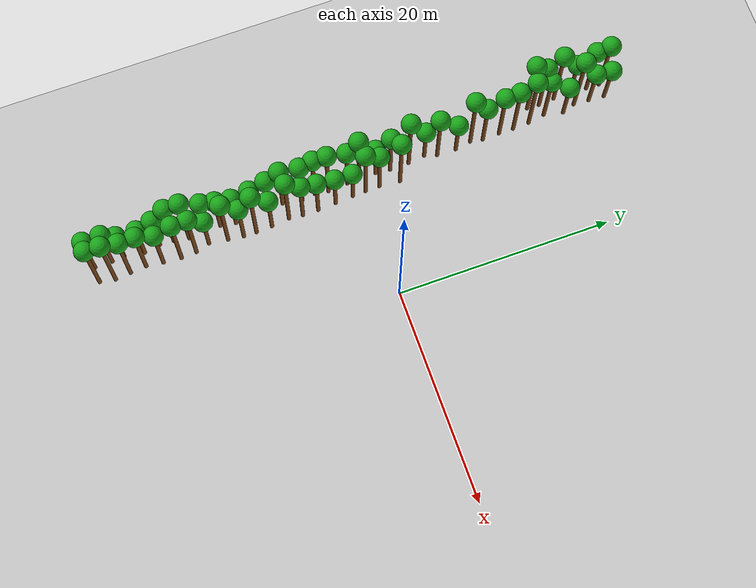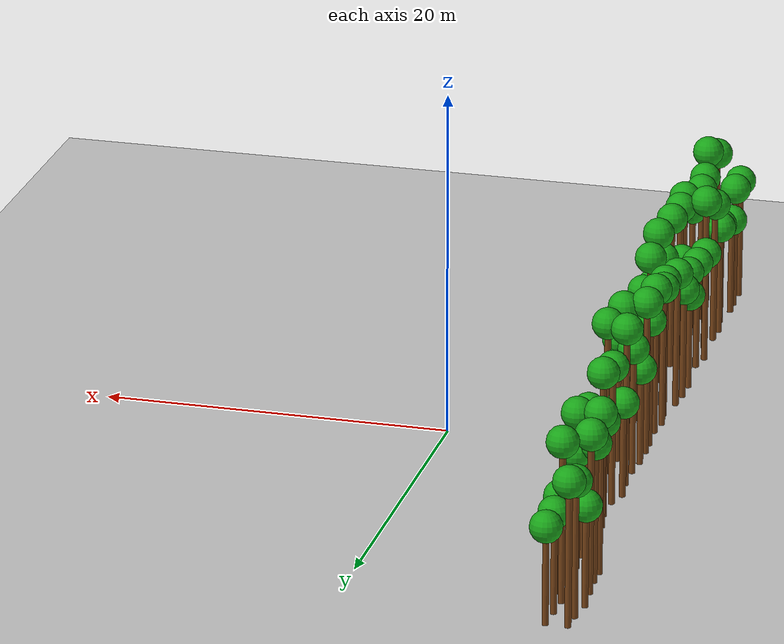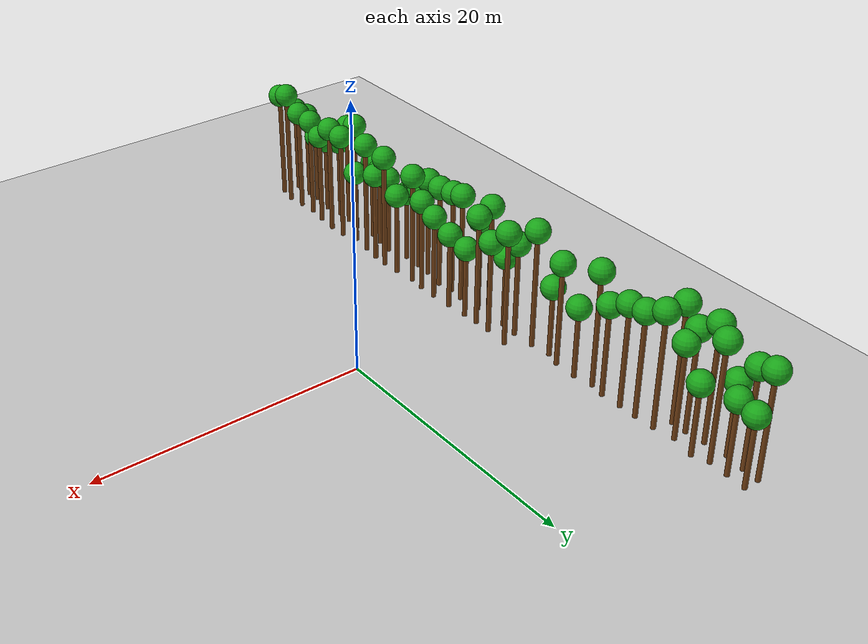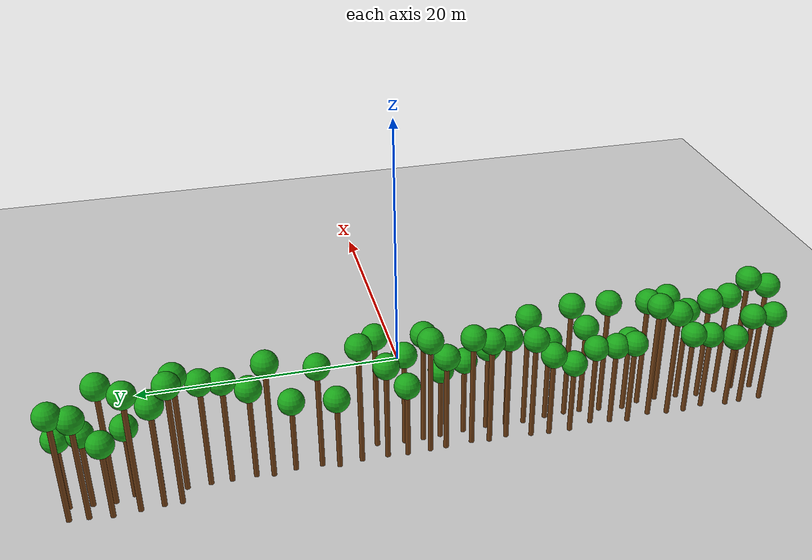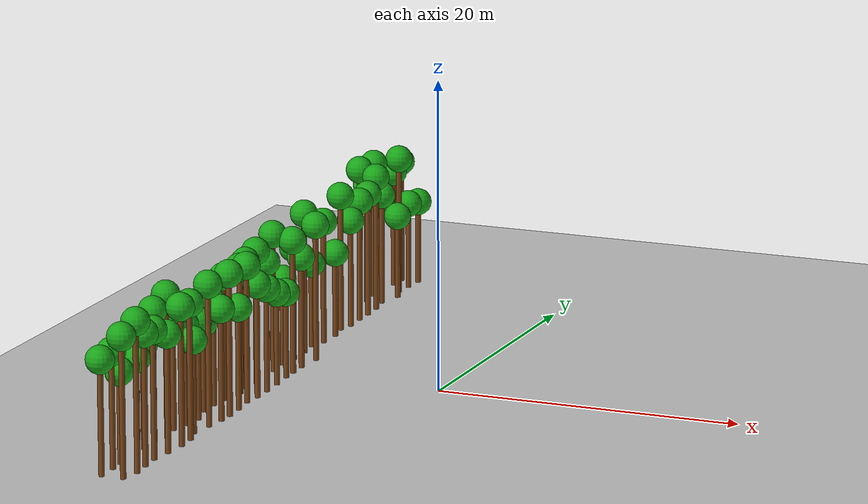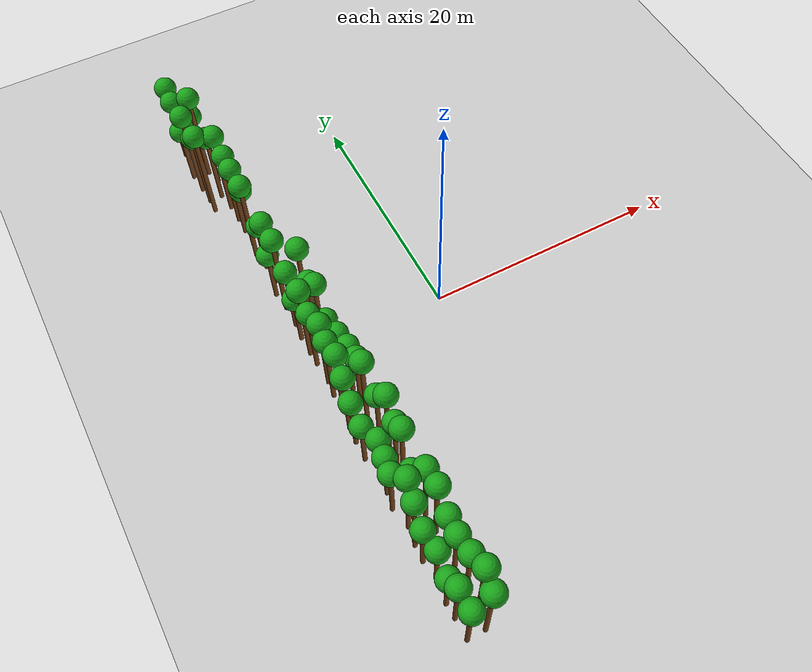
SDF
<sdf version="1.6">
 <world name="forest_world">
  <include><uri>model://sun</uri></include>
  <include><uri>model://ground_plane</uri></include>
  <model name="tree_300">
   <static>true</static>
   <link name="trunk">
    <collision name="collision">
     <pose>-12.79 17.24 4.43 0 0 0</pose>
     <geometry><cylinder><radius>0.18</radius><length>8.85</length></cylinder></geometry>
    </collision>
    <visual name="trunk_visual">
     <pose>-12.79 17.24 4.43 0 0 0</pose>
     <geometry><cylinder><radius>0.18</radius><length>8.85</length></cylinder></geometry>
     <material><ambient>0.35 0.20 0.05 1</ambient><diffuse>0.45 0.25 0.08 1</diffuse></material>
    </visual>
    <visual name="leaf_visual">
     <pose>-12.79 17.24 9.30 0 0 0</pose>
     <geometry><sphere><radius>0.9</radius></sphere></geometry>
     <material><ambient>0.05 0.45 0.05 1</ambient><diffuse>0.10 0.65 0.10 1</diffuse></material>
    </visual>
   </link>
  </model>
  <model name="tree_301">
   <static>true</static>
   <link name="trunk">
    <collision name="collision">
     <pose>-12.78 18.40 3.77 0 0 0</pose>
     <geometry><cylinder><radius>0.18</radius><length>7.55</length></cylinder></geometry>
    </collision>
    <visual name="trunk_visual">
     <pose>-12.78 18.40 3.77 0 0 0</pose>
     <geometry><cylinder><radius>0.18</radius><length>7.55</length></cylinder></geometry>
     <material><ambient>0.35 0.20 0.05 1</ambient><diffuse>0.45 0.25 0.08 1</diffuse></material>
    </visual>
    <visual name="leaf_visual">
     <pose>-12.78 18.40 8.00 0 0 0</pose>
     <geometry><sphere><radius>0.9</radius></sphere></geometry>
     <material><ambient>0.05 0.45 0.05 1</ambient><diffuse>0.10 0.65 0.10 1</diffuse></material>
    </visual>
   </link>
  </model>
  <model name="tree_302">
   <static>true</static>
   <link name="trunk">
    <collision name="collision">
     <pose>-12.90 19.90 4.34 0 0 0</pose>
     <geometry><cylinder><radius>0.18</radius><length>8.68</length></cylinder></geometry>
    </collision>
    <visual name="trunk_visual">
     <pose>-12.90 19.90 4.34 0 0 0</pose>
     <geometry><cylinder><radius>0.18</radius><length>8.68</length></cylinder></geometry>
     <material><ambient>0.35 0.20 0.05 1</ambient><diffuse>0.45 0.25 0.08 1</diffuse></material>
    </visual>
    <visual name="leaf_visual">
     <pose>-12.90 19.90 9.13 0 0 0</pose>
     <geometry><sphere><radius>0.9</radius></sphere></geometry>
     <material><ambient>0.05 0.45 0.05 1</ambient><diffuse>0.10 0.65 0.10 1</diffuse></material>
    </visual>
   </link>
  </model>
  <model name="tree_303">
   <static>true</static>
   <link name="trunk">
    <collision name="collision">
     <pose>-13.05 21.64 2.68 0 0 0</pose>
     <geometry><cylinder><radius>0.18</radius><length>5.36</length></cylinder></geometry>
    </collision>
    <visual name="trunk_visual">
     <pose>-13.05 21.64 2.68 0 0 0</pose>
     <geometry><cylinder><radius>0.18</radius><length>5.36</length></cylinder></geometry>
     <material><ambient>0.35 0.20 0.05 1</ambient><diffuse>0.45 0.25 0.08 1</diffuse></material>
    </visual>
    <visual name="leaf_visual">
     <pose>-13.05 21.64 5.81 0 0 0</pose>
     <geometry><sphere><radius>0.9</radius></sphere></geometry>
     <material><ambient>0.05 0.45 0.05 1</ambient><diffuse>0.10 0.65 0.10 1</diffuse></material>
    </visual>
   </link>
  </model>
  <model name="tree_304">
   <static>true</static>
   <link name="trunk">
    <collision name="collision">
     <pose>-12.84 23.14 3.68 0 0 0</pose>
     <geometry><cylinder><radius>0.18</radius><length>7.36</length></cylinder></geometry>
    </collision>
    <visual name="trunk_visual">
     <pose>-12.84 23.14 3.68 0 0 0</pose>
     <geometry><cylinder><radius>0.18</radius><length>7.36</length></cylinder></geometry>
     <material><ambient>0.35 0.20 0.05 1</ambient><diffuse>0.45 0.25 0.08 1</diffuse></material>
    </visual>
    <visual name="leaf_visual">
     <pose>-12.84 23.14 7.81 0 0 0</pose>
     <geometry><sphere><radius>0.9</radius></sphere></geometry>
     <material><ambient>0.05 0.45 0.05 1</ambient><diffuse>0.10 0.65 0.10 1</diffuse></material>
    </visual>
   </link>
  </model>
  <model name="tree_305">
   <static>true</static>
   <link name="trunk">
    <collision name="collision">
     <pose>-12.78 24.39 3.91 0 0 0</pose>
     <geometry><cylinder><radius>0.18</radius><length>7.82</length></cylinder></geometry>
    </collision>
    <visual name="trunk_visual">
     <pose>-12.78 24.39 3.91 0 0 0</pose>
     <geometry><cylinder><radius>0.18</radius><length>7.82</length></cylinder></geometry>
     <material><ambient>0.35 0.20 0.05 1</ambient><diffuse>0.45 0.25 0.08 1</diffuse></material>
    </visual>
    <visual name="leaf_visual">
     <pose>-12.78 24.39 8.27 0 0 0</pose>
     <geometry><sphere><radius>0.9</radius></sphere></geometry>
     <material><ambient>0.05 0.45 0.05 1</ambient><diffuse>0.10 0.65 0.10 1</diffuse></material>
    </visual>
   </link>
  </model>
  <model name="tree_306">
   <static>true</static>
   <link name="trunk">
    <collision name="collision">
     <pose>-11.51 -24.89 3.39 0 0 0</pose>
     <geometry><cylinder><radius>0.18</radius><length>6.78</length></cylinder></geometry>
    </collision>
    <visual name="trunk_visual">
     <pose>-11.51 -24.89 3.39 0 0 0</pose>
     <geometry><cylinder><radius>0.18</radius><length>6.78</length></cylinder></geometry>
     <material><ambient>0.35 0.20 0.05 1</ambient><diffuse>0.45 0.25 0.08 1</diffuse></material>
    </visual>
    <visual name="leaf_visual">
     <pose>-11.51 -24.89 7.23 0 0 0</pose>
     <geometry><sphere><radius>0.9</radius></sphere></geometry>
     <material><ambient>0.05 0.45 0.05 1</ambient><diffuse>0.10 0.65 0.10 1</diffuse></material>
    </visual>
   </link>
  </model>
  <model name="tree_307">
   <static>true</static>
   <link name="trunk">
    <collision name="collision">
     <pose>-11.54 -23.26 3.43 0 0 0</pose>
     <geometry><cylinder><radius>0.18</radius><length>6.86</length></cylinder></geometry>
    </collision>
    <visual name="trunk_visual">
     <pose>-11.54 -23.26 3.43 0 0 0</pose>
     <geometry><cylinder><radius>0.18</radius><length>6.86</length></cylinder></geometry>
     <material><ambient>0.35 0.20 0.05 1</ambient><diffuse>0.45 0.25 0.08 1</diffuse></material>
    </visual>
    <visual name="leaf_visual">
     <pose>-11.54 -23.26 7.31 0 0 0</pose>
     <geometry><sphere><radius>0.9</radius></sphere></geometry>
     <material><ambient>0.05 0.45 0.05 1</ambient><diffuse>0.10 0.65 0.10 1</diffuse></material>
    </visual>
   </link>
  </model>
  <model name="tree_308">
   <static>true</static>
   <link name="trunk">
    <collision name="collision">
     <pose>-11.59 -22.11 2.66 0 0 0</pose>
     <geometry><cylinder><radius>0.18</radius><length>5.32</length></cylinder></geometry>
    </collision>
    <visual name="trunk_visual">
     <pose>-11.59 -22.11 2.66 0 0 0</pose>
     <geometry><cylinder><radius>0.18</radius><length>5.32</length></cylinder></geometry>
     <material><ambient>0.35 0.20 0.05 1</ambient><diffuse>0.45 0.25 0.08 1</diffuse></material>
    </visual>
    <visual name="leaf_visual">
     <pose>-11.59 -22.11 5.77 0 0 0</pose>
     <geometry><sphere><radius>0.9</radius></sphere></geometry>
     <material><ambient>0.05 0.45 0.05 1</ambient><diffuse>0.10 0.65 0.10 1</diffuse></material>
    </visual>
   </link>
  </model>
  <model name="tree_309">
   <static>true</static>
   <link name="trunk">
    <collision name="collision">
     <pose>-11.35 -20.26 2.84 0 0 0</pose>
     <geometry><cylinder><radius>0.18</radius><length>5.68</length></cylinder></geometry>
    </collision>
    <visual name="trunk_visual">
     <pose>-11.35 -20.26 2.84 0 0 0</pose>
     <geometry><cylinder><radius>0.18</radius><length>5.68</length></cylinder></geometry>
     <material><ambient>0.35 0.20 0.05 1</ambient><diffuse>0.45 0.25 0.08 1</diffuse></material>
    </visual>
    <visual name="leaf_visual">
     <pose>-11.35 -20.26 6.13 0 0 0</pose>
     <geometry><sphere><radius>0.9</radius></sphere></geometry>
     <material><ambient>0.05 0.45 0.05 1</ambient><diffuse>0.10 0.65 0.10 1</diffuse></material>
    </visual>
   </link>
  </model>
  <model name="tree_310">
   <static>true</static>
   <link name="trunk">
    <collision name="collision">
     <pose>-11.60 -18.76 3.05 0 0 0</pose>
     <geometry><cylinder><radius>0.18</radius><length>6.09</length></cylinder></geometry>
    </collision>
    <visual name="trunk_visual">
     <pose>-11.60 -18.76 3.05 0 0 0</pose>
     <geometry><cylinder><radius>0.18</radius><length>6.09</length></cylinder></geometry>
     <material><ambient>0.35 0.20 0.05 1</ambient><diffuse>0.45 0.25 0.08 1</diffuse></material>
    </visual>
    <visual name="leaf_visual">
     <pose>-11.60 -18.76 6.54 0 0 0</pose>
     <geometry><sphere><radius>0.9</radius></sphere></geometry>
     <material><ambient>0.05 0.45 0.05 1</ambient><diffuse>0.10 0.65 0.10 1</diffuse></material>
    </visual>
   </link>
  </model>
  <model name="tree_311">
   <static>true</static>
   <link name="trunk">
    <collision name="collision">
     <pose>-11.54 -17.46 3.99 0 0 0</pose>
     <geometry><cylinder><radius>0.18</radius><length>7.98</length></cylinder></geometry>
    </collision>
    <visual name="trunk_visual">
     <pose>-11.54 -17.46 3.99 0 0 0</pose>
     <geometry><cylinder><radius>0.18</radius><length>7.98</length></cylinder></geometry>
     <material><ambient>0.35 0.20 0.05 1</ambient><diffuse>0.45 0.25 0.08 1</diffuse></material>
    </visual>
    <visual name="leaf_visual">
     <pose>-11.54 -17.46 8.43 0 0 0</pose>
     <geometry><sphere><radius>0.9</radius></sphere></geometry>
     <material><ambient>0.05 0.45 0.05 1</ambient><diffuse>0.10 0.65 0.10 1</diffuse></material>
    </visual>
   </link>
  </model>
  <model name="tree_312">
   <static>true</static>
   <link name="trunk">
    <collision name="collision">
     <pose>-11.31 -16.07 4.32 0 0 0</pose>
     <geometry><cylinder><radius>0.18</radius><length>8.65</length></cylinder></geometry>
    </collision>
    <visual name="trunk_visual">
     <pose>-11.31 -16.07 4.32 0 0 0</pose>
     <geometry><cylinder><radius>0.18</radius><length>8.65</length></cylinder></geometry>
     <material><ambient>0.35 0.20 0.05 1</ambient><diffuse>0.45 0.25 0.08 1</diffuse></material>
    </visual>
    <visual name="leaf_visual">
     <pose>-11.31 -16.07 9.10 0 0 0</pose>
     <geometry><sphere><radius>0.9</radius></sphere></geometry>
     <material><ambient>0.05 0.45 0.05 1</ambient><diffuse>0.10 0.65 0.10 1</diffuse></material>
    </visual>
   </link>
  </model>
  <model name="tree_313">
   <static>true</static>
   <link name="trunk">
    <collision name="collision">
     <pose>-11.70 -14.32 3.05 0 0 0</pose>
     <geometry><cylinder><radius>0.18</radius><length>6.11</length></cylinder></geometry>
    </collision>
    <visual name="trunk_visual">
     <pose>-11.70 -14.32 3.05 0 0 0</pose>
     <geometry><cylinder><radius>0.18</radius><length>6.11</length></cylinder></geometry>
     <material><ambient>0.35 0.20 0.05 1</ambient><diffuse>0.45 0.25 0.08 1</diffuse></material>
    </visual>
    <visual name="leaf_visual">
     <pose>-11.70 -14.32 6.56 0 0 0</pose>
     <geometry><sphere><radius>0.9</radius></sphere></geometry>
     <material><ambient>0.05 0.45 0.05 1</ambient><diffuse>0.10 0.65 0.10 1</diffuse></material>
    </visual>
   </link>
  </model>
  <model name="tree_314">
   <static>true</static>
   <link name="trunk">
    <collision name="collision">
     <pose>-11.48 -13.05 2.99 0 0 0</pose>
     <geometry><cylinder><radius>0.18</radius><length>5.98</length></cylinder></geometry>
    </collision>
    <visual name="trunk_visual">
     <pose>-11.48 -13.05 2.99 0 0 0</pose>
     <geometry><cylinder><radius>0.18</radius><length>5.98</length></cylinder></geometry>
     <material><ambient>0.35 0.20 0.05 1</ambient><diffuse>0.45 0.25 0.08 1</diffuse></material>
    </visual>
    <visual name="leaf_visual">
     <pose>-11.48 -13.05 6.43 0 0 0</pose>
     <geometry><sphere><radius>0.9</radius></sphere></geometry>
     <material><ambient>0.05 0.45 0.05 1</ambient><diffuse>0.10 0.65 0.10 1</diffuse></material>
    </visual>
   </link>
  </model>
  <model name="tree_315">
   <static>true</static>
   <link name="trunk">
    <collision name="collision">
     <pose>-11.26 -11.64 2.95 0 0 0</pose>
     <geometry><cylinder><radius>0.18</radius><length>5.90</length></cylinder></geometry>
    </collision>
    <visual name="trunk_visual">
     <pose>-11.26 -11.64 2.95 0 0 0</pose>
     <geometry><cylinder><radius>0.18</radius><length>5.90</length></cylinder></geometry>
     <material><ambient>0.35 0.20 0.05 1</ambient><diffuse>0.45 0.25 0.08 1</diffuse></material>
    </visual>
    <visual name="leaf_visual">
     <pose>-11.26 -11.64 6.35 0 0 0</pose>
     <geometry><sphere><radius>0.9</radius></sphere></geometry>
     <material><ambient>0.05 0.45 0.05 1</ambient><diffuse>0.10 0.65 0.10 1</diffuse></material>
    </visual>
   </link>
  </model>
  <model name="tree_316">
   <static>true</static>
   <link name="trunk">
    <collision name="collision">
     <pose>-11.72 -9.90 2.60 0 0 0</pose>
     <geometry><cylinder><radius>0.18</radius><length>5.20</length></cylinder></geometry>
    </collision>
    <visual name="trunk_visual">
     <pose>-11.72 -9.90 2.60 0 0 0</pose>
     <geometry><cylinder><radius>0.18</radius><length>5.20</length></cylinder></geometry>
     <material><ambient>0.35 0.20 0.05 1</ambient><diffuse>0.45 0.25 0.08 1</diffuse></material>
    </visual>
    <visual name="leaf_visual">
     <pose>-11.72 -9.90 5.65 0 0 0</pose>
     <geometry><sphere><radius>0.9</radius></sphere></geometry>
     <material><ambient>0.05 0.45 0.05 1</ambient><diffuse>0.10 0.65 0.10 1</diffuse></material>
    </visual>
   </link>
  </model>
  <model name="tree_317">
   <static>true</static>
   <link name="trunk">
    <collision name="collision">
     <pose>-11.71 -8.36 3.07 0 0 0</pose>
     <geometry><cylinder><radius>0.18</radius><length>6.14</length></cylinder></geometry>
    </collision>
    <visual name="trunk_visual">
     <pose>-11.71 -8.36 3.07 0 0 0</pose>
     <geometry><cylinder><radius>0.18</radius><length>6.14</length></cylinder></geometry>
     <material><ambient>0.35 0.20 0.05 1</ambient><diffuse>0.45 0.25 0.08 1</diffuse></material>
    </visual>
    <visual name="leaf_visual">
     <pose>-11.71 -8.36 6.59 0 0 0</pose>
     <geometry><sphere><radius>0.9</radius></sphere></geometry>
     <material><ambient>0.05 0.45 0.05 1</ambient><diffuse>0.10 0.65 0.10 1</diffuse></material>
    </visual>
   </link>
  </model>
  <model name="tree_318">
   <static>true</static>
   <link name="trunk">
    <collision name="collision">
     <pose>-11.60 -7.06 3.78 0 0 0</pose>
     <geometry><cylinder><radius>0.18</radius><length>7.55</length></cylinder></geometry>
    </collision>
    <visual name="trunk_visual">
     <pose>-11.60 -7.06 3.78 0 0 0</pose>
     <geometry><cylinder><radius>0.18</radius><length>7.55</length></cylinder></geometry>
     <material><ambient>0.35 0.20 0.05 1</ambient><diffuse>0.45 0.25 0.08 1</diffuse></material>
    </visual>
    <visual name="leaf_visual">
     <pose>-11.60 -7.06 8.00 0 0 0</pose>
     <geometry><sphere><radius>0.9</radius></sphere></geometry>
     <material><ambient>0.05 0.45 0.05 1</ambient><diffuse>0.10 0.65 0.10 1</diffuse></material>
    </visual>
   </link>
  </model>
  <model name="tree_319">
   <static>true</static>
   <link name="trunk">
    <collision name="collision">
     <pose>-11.29 -5.29 3.88 0 0 0</pose>
     <geometry><cylinder><radius>0.18</radius><length>7.76</length></cylinder></geometry>
    </collision>
    <visual name="trunk_visual">
     <pose>-11.29 -5.29 3.88 0 0 0</pose>
     <geometry><cylinder><radius>0.18</radius><length>7.76</length></cylinder></geometry>
     <material><ambient>0.35 0.20 0.05 1</ambient><diffuse>0.45 0.25 0.08 1</diffuse></material>
    </visual>
    <visual name="leaf_visual">
     <pose>-11.29 -5.29 8.21 0 0 0</pose>
     <geometry><sphere><radius>0.9</radius></sphere></geometry>
     <material><ambient>0.05 0.45 0.05 1</ambient><diffuse>0.10 0.65 0.10 1</diffuse></material>
    </visual>
   </link>
  </model>
  <model name="tree_320">
   <static>true</static>
   <link name="trunk">
    <collision name="collision">
     <pose>-11.48 -4.01 3.91 0 0 0</pose>
     <geometry><cylinder><radius>0.18</radius><length>7.83</length></cylinder></geometry>
    </collision>
    <visual name="trunk_visual">
     <pose>-11.48 -4.01 3.91 0 0 0</pose>
     <geometry><cylinder><radius>0.18</radius><length>7.83</length></cylinder></geometry>
     <material><ambient>0.35 0.20 0.05 1</ambient><diffuse>0.45 0.25 0.08 1</diffuse></material>
    </visual>
    <visual name="leaf_visual">
     <pose>-11.48 -4.01 8.28 0 0 0</pose>
     <geometry><sphere><radius>0.9</radius></sphere></geometry>
     <material><ambient>0.05 0.45 0.05 1</ambient><diffuse>0.10 0.65 0.10 1</diffuse></material>
    </visual>
   </link>
  </model>
  <model name="tree_321">
   <static>true</static>
   <link name="trunk">
    <collision name="collision">
     <pose>-11.33 -2.75 4.09 0 0 0</pose>
     <geometry><cylinder><radius>0.18</radius><length>8.19</length></cylinder></geometry>
    </collision>
    <visual name="trunk_visual">
     <pose>-11.33 -2.75 4.09 0 0 0</pose>
     <geometry><cylinder><radius>0.18</radius><length>8.19</length></cylinder></geometry>
     <material><ambient>0.35 0.20 0.05 1</ambient><diffuse>0.45 0.25 0.08 1</diffuse></material>
    </visual>
    <visual name="leaf_visual">
     <pose>-11.33 -2.75 8.64 0 0 0</pose>
     <geometry><sphere><radius>0.9</radius></sphere></geometry>
     <material><ambient>0.05 0.45 0.05 1</ambient><diffuse>0.10 0.65 0.10 1</diffuse></material>
    </visual>
   </link>
  </model>
  <model name="tree_322">
   <static>true</static>
   <link name="trunk">
    <collision name="collision">
     <pose>-11.44 -0.88 3.51 0 0 0</pose>
     <geometry><cylinder><radius>0.18</radius><length>7.03</length></cylinder></geometry>
    </collision>
    <visual name="trunk_visual">
     <pose>-11.44 -0.88 3.51 0 0 0</pose>
     <geometry><cylinder><radius>0.18</radius><length>7.03</length></cylinder></geometry>
     <material><ambient>0.35 0.20 0.05 1</ambient><diffuse>0.45 0.25 0.08 1</diffuse></material>
    </visual>
    <visual name="leaf_visual">
     <pose>-11.44 -0.88 7.48 0 0 0</pose>
     <geometry><sphere><radius>0.9</radius></sphere></geometry>
     <material><ambient>0.05 0.45 0.05 1</ambient><diffuse>0.10 0.65 0.10 1</diffuse></material>
    </visual>
   </link>
  </model>
  <model name="tree_323">
   <static>true</static>
   <link name="trunk">
    <collision name="collision">
     <pose>-11.50 0.26 4.28 0 0 0</pose>
     <geometry><cylinder><radius>0.18</radius><length>8.56</length></cylinder></geometry>
    </collision>
    <visual name="trunk_visual">
     <pose>-11.50 0.26 4.28 0 0 0</pose>
     <geometry><cylinder><radius>0.18</radius><length>8.56</length></cylinder></geometry>
     <material><ambient>0.35 0.20 0.05 1</ambient><diffuse>0.45 0.25 0.08 1</diffuse></material>
    </visual>
    <visual name="leaf_visual">
     <pose>-11.50 0.26 9.01 0 0 0</pose>
     <geometry><sphere><radius>0.9</radius></sphere></geometry>
     <material><ambient>0.05 0.45 0.05 1</ambient><diffuse>0.10 0.65 0.10 1</diffuse></material>
    </visual>
   </link>
  </model>
  <model name="tree_324">
   <static>true</static>
   <link name="trunk">
    <collision name="collision">
     <pose>-11.54 1.87 2.63 0 0 0</pose>
     <geometry><cylinder><radius>0.18</radius><length>5.25</length></cylinder></geometry>
    </collision>
    <visual name="trunk_visual">
     <pose>-11.54 1.87 2.63 0 0 0</pose>
     <geometry><cylinder><radius>0.18</radius><length>5.25</length></cylinder></geometry>
     <material><ambient>0.35 0.20 0.05 1</ambient><diffuse>0.45 0.25 0.08 1</diffuse></material>
    </visual>
    <visual name="leaf_visual">
     <pose>-11.54 1.87 5.70 0 0 0</pose>
     <geometry><sphere><radius>0.9</radius></sphere></geometry>
     <material><ambient>0.05 0.45 0.05 1</ambient><diffuse>0.10 0.65 0.10 1</diffuse></material>
    </visual>
   </link>
  </model>
  <model name="tree_325">
   <static>true</static>
   <link name="trunk">
    <collision name="collision">
     <pose>-11.41 3.25 3.49 0 0 0</pose>
     <geometry><cylinder><radius>0.18</radius><length>6.98</length></cylinder></geometry>
    </collision>
    <visual name="trunk_visual">
     <pose>-11.41 3.25 3.49 0 0 0</pose>
     <geometry><cylinder><radius>0.18</radius><length>6.98</length></cylinder></geometry>
     <material><ambient>0.35 0.20 0.05 1</ambient><diffuse>0.45 0.25 0.08 1</diffuse></material>
    </visual>
    <visual name="leaf_visual">
     <pose>-11.41 3.25 7.43 0 0 0</pose>
     <geometry><sphere><radius>0.9</radius></sphere></geometry>
     <material><ambient>0.05 0.45 0.05 1</ambient><diffuse>0.10 0.65 0.10 1</diffuse></material>
    </visual>
   </link>
  </model>
  <model name="tree_326">
   <static>true</static>
   <link name="trunk">
    <collision name="collision">
     <pose>-11.44 5.06 4.41 0 0 0</pose>
     <geometry><cylinder><radius>0.18</radius><length>8.81</length></cylinder></geometry>
    </collision>
    <visual name="trunk_visual">
     <pose>-11.44 5.06 4.41 0 0 0</pose>
     <geometry><cylinder><radius>0.18</radius><length>8.81</length></cylinder></geometry>
     <material><ambient>0.35 0.20 0.05 1</ambient><diffuse>0.45 0.25 0.08 1</diffuse></material>
    </visual>
    <visual name="leaf_visual">
     <pose>-11.44 5.06 9.26 0 0 0</pose>
     <geometry><sphere><radius>0.9</radius></sphere></geometry>
     <material><ambient>0.05 0.45 0.05 1</ambient><diffuse>0.10 0.65 0.10 1</diffuse></material>
    </visual>
   </link>
  </model>
  <model name="tree_327">
   <static>true</static>
   <link name="trunk">
    <collision name="collision">
     <pose>-11.64 6.65 2.55 0 0 0</pose>
     <geometry><cylinder><radius>0.18</radius><length>5.10</length></cylinder></geometry>
    </collision>
    <visual name="trunk_visual">
     <pose>-11.64 6.65 2.55 0 0 0</pose>
     <geometry><cylinder><radius>0.18</radius><length>5.10</length></cylinder></geometry>
     <material><ambient>0.35 0.20 0.05 1</ambient><diffuse>0.45 0.25 0.08 1</diffuse></material>
    </visual>
    <visual name="leaf_visual">
     <pose>-11.64 6.65 5.55 0 0 0</pose>
     <geometry><sphere><radius>0.9</radius></sphere></geometry>
     <material><ambient>0.05 0.45 0.05 1</ambient><diffuse>0.10 0.65 0.10 1</diffuse></material>
    </visual>
   </link>
  </model>
  <model name="tree_328">
   <static>true</static>
   <link name="trunk">
    <collision name="collision">
     <pose>-11.29 7.79 3.83 0 0 0</pose>
     <geometry><cylinder><radius>0.18</radius><length>7.65</length></cylinder></geometry>
    </collision>
    <visual name="trunk_visual">
     <pose>-11.29 7.79 3.83 0 0 0</pose>
     <geometry><cylinder><radius>0.18</radius><length>7.65</length></cylinder></geometry>
     <material><ambient>0.35 0.20 0.05 1</ambient><diffuse>0.45 0.25 0.08 1</diffuse></material>
    </visual>
    <visual name="leaf_visual">
     <pose>-11.29 7.79 8.10 0 0 0</pose>
     <geometry><sphere><radius>0.9</radius></sphere></geometry>
     <material><ambient>0.05 0.45 0.05 1</ambient><diffuse>0.10 0.65 0.10 1</diffuse></material>
    </visual>
   </link>
  </model>
  <model name="tree_329">
   <static>true</static>
   <link name="trunk">
    <collision name="collision">
     <pose>-11.25 9.59 2.57 0 0 0</pose>
     <geometry><cylinder><radius>0.18</radius><length>5.14</length></cylinder></geometry>
    </collision>
    <visual name="trunk_visual">
     <pose>-11.25 9.59 2.57 0 0 0</pose>
     <geometry><cylinder><radius>0.18</radius><length>5.14</length></cylinder></geometry>
     <material><ambient>0.35 0.20 0.05 1</ambient><diffuse>0.45 0.25 0.08 1</diffuse></material>
    </visual>
    <visual name="leaf_visual">
     <pose>-11.25 9.59 5.59 0 0 0</pose>
     <geometry><sphere><radius>0.9</radius></sphere></geometry>
     <material><ambient>0.05 0.45 0.05 1</ambient><diffuse>0.10 0.65 0.10 1</diffuse></material>
    </visual>
   </link>
  </model>
  <model name="tree_330">
   <static>true</static>
   <link name="trunk">
    <collision name="collision">
     <pose>-11.51 11.11 4.30 0 0 0</pose>
     <geometry><cylinder><radius>0.18</radius><length>8.59</length></cylinder></geometry>
    </collision>
    <visual name="trunk_visual">
     <pose>-11.51 11.11 4.30 0 0 0</pose>
     <geometry><cylinder><radius>0.18</radius><length>8.59</length></cylinder></geometry>
     <material><ambient>0.35 0.20 0.05 1</ambient><diffuse>0.45 0.25 0.08 1</diffuse></material>
    </visual>
    <visual name="leaf_visual">
     <pose>-11.51 11.11 9.04 0 0 0</pose>
     <geometry><sphere><radius>0.9</radius></sphere></geometry>
     <material><ambient>0.05 0.45 0.05 1</ambient><diffuse>0.10 0.65 0.10 1</diffuse></material>
    </visual>
   </link>
  </model>
  <model name="tree_331">
   <static>true</static>
   <link name="trunk">
    <collision name="collision">
     <pose>-11.30 12.27 3.34 0 0 0</pose>
     <geometry><cylinder><radius>0.18</radius><length>6.68</length></cylinder></geometry>
    </collision>
    <visual name="trunk_visual">
     <pose>-11.30 12.27 3.34 0 0 0</pose>
     <geometry><cylinder><radius>0.18</radius><length>6.68</length></cylinder></geometry>
     <material><ambient>0.35 0.20 0.05 1</ambient><diffuse>0.45 0.25 0.08 1</diffuse></material>
    </visual>
    <visual name="leaf_visual">
     <pose>-11.30 12.27 7.13 0 0 0</pose>
     <geometry><sphere><radius>0.9</radius></sphere></geometry>
     <material><ambient>0.05 0.45 0.05 1</ambient><diffuse>0.10 0.65 0.10 1</diffuse></material>
    </visual>
   </link>
  </model>
  <model name="tree_332">
   <static>true</static>
   <link name="trunk">
    <collision name="collision">
     <pose>-11.36 13.89 3.80 0 0 0</pose>
     <geometry><cylinder><radius>0.18</radius><length>7.60</length></cylinder></geometry>
    </collision>
    <visual name="trunk_visual">
     <pose>-11.36 13.89 3.80 0 0 0</pose>
     <geometry><cylinder><radius>0.18</radius><length>7.60</length></cylinder></geometry>
     <material><ambient>0.35 0.20 0.05 1</ambient><diffuse>0.45 0.25 0.08 1</diffuse></material>
    </visual>
    <visual name="leaf_visual">
     <pose>-11.36 13.89 8.05 0 0 0</pose>
     <geometry><sphere><radius>0.9</radius></sphere></geometry>
     <material><ambient>0.05 0.45 0.05 1</ambient><diffuse>0.10 0.65 0.10 1</diffuse></material>
    </visual>
   </link>
  </model>
  <model name="tree_333">
   <static>true</static>
   <link name="trunk">
    <collision name="collision">
     <pose>-11.36 15.29 3.88 0 0 0</pose>
     <geometry><cylinder><radius>0.18</radius><length>7.76</length></cylinder></geometry>
    </collision>
    <visual name="trunk_visual">
     <pose>-11.36 15.29 3.88 0 0 0</pose>
     <geometry><cylinder><radius>0.18</radius><length>7.76</length></cylinder></geometry>
     <material><ambient>0.35 0.20 0.05 1</ambient><diffuse>0.45 0.25 0.08 1</diffuse></material>
    </visual>
    <visual name="leaf_visual">
     <pose>-11.36 15.29 8.21 0 0 0</pose>
     <geometry><sphere><radius>0.9</radius></sphere></geometry>
     <material><ambient>0.05 0.45 0.05 1</ambient><diffuse>0.10 0.65 0.10 1</diffuse></material>
    </visual>
   </link>
  </model>
  <model name="tree_334">
   <static>true</static>
   <link name="trunk">
    <collision name="collision">
     <pose>-11.44 16.85 4.28 0 0 0</pose>
     <geometry><cylinder><radius>0.18</radius><length>8.55</length></cylinder></geometry>
    </collision>
    <visual name="trunk_visual">
     <pose>-11.44 16.85 4.28 0 0 0</pose>
     <geometry><cylinder><radius>0.18</radius><length>8.55</length></cylinder></geometry>
     <material><ambient>0.35 0.20 0.05 1</ambient><diffuse>0.45 0.25 0.08 1</diffuse></material>
    </visual>
    <visual name="leaf_visual">
     <pose>-11.44 16.85 9.00 0 0 0</pose>
     <geometry><sphere><radius>0.9</radius></sphere></geometry>
     <material><ambient>0.05 0.45 0.05 1</ambient><diffuse>0.10 0.65 0.10 1</diffuse></material>
    </visual>
   </link>
  </model>
  <model name="tree_335">
   <static>true</static>
   <link name="trunk">
    <collision name="collision">
     <pose>-11.70 18.45 3.48 0 0 0</pose>
     <geometry><cylinder><radius>0.18</radius><length>6.96</length></cylinder></geometry>
    </collision>
    <visual name="trunk_visual">
     <pose>-11.70 18.45 3.48 0 0 0</pose>
     <geometry><cylinder><radius>0.18</radius><length>6.96</length></cylinder></geometry>
     <material><ambient>0.35 0.20 0.05 1</ambient><diffuse>0.45 0.25 0.08 1</diffuse></material>
    </visual>
    <visual name="leaf_visual">
     <pose>-11.70 18.45 7.41 0 0 0</pose>
     <geometry><sphere><radius>0.9</radius></sphere></geometry>
     <material><ambient>0.05 0.45 0.05 1</ambient><diffuse>0.10 0.65 0.10 1</diffuse></material>
    </visual>
   </link>
  </model>
  <model name="tree_336">
   <static>true</static>
   <link name="trunk">
    <collision name="collision">
     <pose>-11.32 20.23 2.56 0 0 0</pose>
     <geometry><cylinder><radius>0.18</radius><length>5.13</length></cylinder></geometry>
    </collision>
    <visual name="trunk_visual">
     <pose>-11.32 20.23 2.56 0 0 0</pose>
     <geometry><cylinder><radius>0.18</radius><length>5.13</length></cylinder></geometry>
     <material><ambient>0.35 0.20 0.05 1</ambient><diffuse>0.45 0.25 0.08 1</diffuse></material>
    </visual>
    <visual name="leaf_visual">
     <pose>-11.32 20.23 5.58 0 0 0</pose>
     <geometry><sphere><radius>0.9</radius></sphere></geometry>
     <material><ambient>0.05 0.45 0.05 1</ambient><diffuse>0.10 0.65 0.10 1</diffuse></material>
    </visual>
   </link>
  </model>
  <model name="tree_337">
   <static>true</static>
   <link name="trunk">
    <collision name="collision">
     <pose>-11.72 21.44 4.38 0 0 0</pose>
     <geometry><cylinder><radius>0.18</radius><length>8.76</length></cylinder></geometry>
    </collision>
    <visual name="trunk_visual">
     <pose>-11.72 21.44 4.38 0 0 0</pose>
     <geometry><cylinder><radius>0.18</radius><length>8.76</length></cylinder></geometry>
     <material><ambient>0.35 0.20 0.05 1</ambient><diffuse>0.45 0.25 0.08 1</diffuse></material>
    </visual>
    <visual name="leaf_visual">
     <pose>-11.72 21.44 9.21 0 0 0</pose>
     <geometry><sphere><radius>0.9</radius></sphere></geometry>
     <material><ambient>0.05 0.45 0.05 1</ambient><diffuse>0.10 0.65 0.10 1</diffuse></material>
    </visual>
   </link>
  </model>
  <model name="tree_338">
   <static>true</static>
   <link name="trunk">
    <collision name="collision">
     <pose>-11.65 22.90 2.68 0 0 0</pose>
     <geometry><cylinder><radius>0.18</radius><length>5.35</length></cylinder></geometry>
    </collision>
    <visual name="trunk_visual">
     <pose>-11.65 22.90 2.68 0 0 0</pose>
     <geometry><cylinder><radius>0.18</radius><length>5.35</length></cylinder></geometry>
     <material><ambient>0.35 0.20 0.05 1</ambient><diffuse>0.45 0.25 0.08 1</diffuse></material>
    </visual>
    <visual name="leaf_visual">
     <pose>-11.65 22.90 5.80 0 0 0</pose>
     <geometry><sphere><radius>0.9</radius></sphere></geometry>
     <material><ambient>0.05 0.45 0.05 1</ambient><diffuse>0.10 0.65 0.10 1</diffuse></material>
    </visual>
   </link>
  </model>
  <model name="tree_339">
   <static>true</static>
   <link name="trunk">
    <collision name="collision">
     <pose>-11.56 24.39 2.58 0 0 0</pose>
     <geometry><cylinder><radius>0.18</radius><length>5.15</length></cylinder></geometry>
    </collision>
    <visual name="trunk_visual">
     <pose>-11.56 24.39 2.58 0 0 0</pose>
     <geometry><cylinder><radius>0.18</radius><length>5.15</length></cylinder></geometry>
     <material><ambient>0.35 0.20 0.05 1</ambient><diffuse>0.45 0.25 0.08 1</diffuse></material>
    </visual>
    <visual name="leaf_visual">
     <pose>-11.56 24.39 5.60 0 0 0</pose>
     <geometry><sphere><radius>0.9</radius></sphere></geometry>
     <material><ambient>0.05 0.45 0.05 1</ambient><diffuse>0.10 0.65 0.10 1</diffuse></material>
    </visual>
   </link>
  </model>
  <model name="tree_340">
   <static>true</static>
   <link name="trunk">
    <collision name="collision">
     <pose>-10.08 -24.89 4.18 0 0 0</pose>
     <geometry><cylinder><radius>0.18</radius><length>8.36</length></cylinder></geometry>
    </collision>
    <visual name="trunk_visual">
     <pose>-10.08 -24.89 4.18 0 0 0</pose>
     <geometry><cylinder><radius>0.18</radius><length>8.36</length></cylinder></geometry>
     <material><ambient>0.35 0.20 0.05 1</ambient><diffuse>0.45 0.25 0.08 1</diffuse></material>
    </visual>
    <visual name="leaf_visual">
     <pose>-10.08 -24.89 8.81 0 0 0</pose>
     <geometry><sphere><radius>0.9</radius></sphere></geometry>
     <material><ambient>0.05 0.45 0.05 1</ambient><diffuse>0.10 0.65 0.10 1</diffuse></material>
    </visual>
   </link>
  </model>
  <model name="tree_341">
   <static>true</static>
   <link name="trunk">
    <collision name="collision">
     <pose>-9.82 -23.47 4.48 0 0 0</pose>
     <geometry><cylinder><radius>0.18</radius><length>8.96</length></cylinder></geometry>
    </collision>
    <visual name="trunk_visual">
     <pose>-9.82 -23.47 4.48 0 0 0</pose>
     <geometry><cylinder><radius>0.18</radius><length>8.96</length></cylinder></geometry>
     <material><ambient>0.35 0.20 0.05 1</ambient><diffuse>0.45 0.25 0.08 1</diffuse></material>
    </visual>
    <visual name="leaf_visual">
     <pose>-9.82 -23.47 9.41 0 0 0</pose>
     <geometry><sphere><radius>0.9</radius></sphere></geometry>
     <material><ambient>0.05 0.45 0.05 1</ambient><diffuse>0.10 0.65 0.10 1</diffuse></material>
    </visual>
   </link>
  </model>
  <model name="tree_342">
   <static>true</static>
   <link name="trunk">
    <collision name="collision">
     <pose>-9.97 -22.02 3.93 0 0 0</pose>
     <geometry><cylinder><radius>0.18</radius><length>7.86</length></cylinder></geometry>
    </collision>
    <visual name="trunk_visual">
     <pose>-9.97 -22.02 3.93 0 0 0</pose>
     <geometry><cylinder><radius>0.18</radius><length>7.86</length></cylinder></geometry>
     <material><ambient>0.35 0.20 0.05 1</ambient><diffuse>0.45 0.25 0.08 1</diffuse></material>
    </visual>
    <visual name="leaf_visual">
     <pose>-9.97 -22.02 8.31 0 0 0</pose>
     <geometry><sphere><radius>0.9</radius></sphere></geometry>
     <material><ambient>0.05 0.45 0.05 1</ambient><diffuse>0.10 0.65 0.10 1</diffuse></material>
    </visual>
   </link>
  </model>
  <model name="tree_343">
   <static>true</static>
   <link name="trunk">
    <collision name="collision">
     <pose>-10.09 -20.53 3.83 0 0 0</pose>
     <geometry><cylinder><radius>0.18</radius><length>7.67</length></cylinder></geometry>
    </collision>
    <visual name="trunk_visual">
     <pose>-10.09 -20.53 3.83 0 0 0</pose>
     <geometry><cylinder><radius>0.18</radius><length>7.67</length></cylinder></geometry>
     <material><ambient>0.35 0.20 0.05 1</ambient><diffuse>0.45 0.25 0.08 1</diffuse></material>
    </visual>
    <visual name="leaf_visual">
     <pose>-10.09 -20.53 8.12 0 0 0</pose>
     <geometry><sphere><radius>0.9</radius></sphere></geometry>
     <material><ambient>0.05 0.45 0.05 1</ambient><diffuse>0.10 0.65 0.10 1</diffuse></material>
    </visual>
   </link>
  </model>
  <model name="tree_344">
   <static>true</static>
   <link name="trunk">
    <collision name="collision">
     <pose>-9.90 -18.96 3.51 0 0 0</pose>
     <geometry><cylinder><radius>0.18</radius><length>7.02</length></cylinder></geometry>
    </collision>
    <visual name="trunk_visual">
     <pose>-9.90 -18.96 3.51 0 0 0</pose>
     <geometry><cylinder><radius>0.18</radius><length>7.02</length></cylinder></geometry>
     <material><ambient>0.35 0.20 0.05 1</ambient><diffuse>0.45 0.25 0.08 1</diffuse></material>
    </visual>
    <visual name="leaf_visual">
     <pose>-9.90 -18.96 7.47 0 0 0</pose>
     <geometry><sphere><radius>0.9</radius></sphere></geometry>
     <material><ambient>0.05 0.45 0.05 1</ambient><diffuse>0.10 0.65 0.10 1</diffuse></material>
    </visual>
   </link>
  </model>
  <model name="tree_345">
   <static>true</static>
   <link name="trunk">
    <collision name="collision">
     <pose>-9.76 -17.30 4.16 0 0 0</pose>
     <geometry><cylinder><radius>0.18</radius><length>8.33</length></cylinder></geometry>
    </collision>
    <visual name="trunk_visual">
     <pose>-9.76 -17.30 4.16 0 0 0</pose>
     <geometry><cylinder><radius>0.18</radius><length>8.33</length></cylinder></geometry>
     <material><ambient>0.35 0.20 0.05 1</ambient><diffuse>0.45 0.25 0.08 1</diffuse></material>
    </visual>
    <visual name="leaf_visual">
     <pose>-9.76 -17.30 8.78 0 0 0</pose>
     <geometry><sphere><radius>0.9</radius></sphere></geometry>
     <material><ambient>0.05 0.45 0.05 1</ambient><diffuse>0.10 0.65 0.10 1</diffuse></material>
    </visual>
   </link>
  </model>
  <model name="tree_346">
   <static>true</static>
   <link name="trunk">
    <collision name="collision">
     <pose>-9.84 -15.86 4.10 0 0 0</pose>
     <geometry><cylinder><radius>0.18</radius><length>8.20</length></cylinder></geometry>
    </collision>
    <visual name="trunk_visual">
     <pose>-9.84 -15.86 4.10 0 0 0</pose>
     <geometry><cylinder><radius>0.18</radius><length>8.20</length></cylinder></geometry>
     <material><ambient>0.35 0.20 0.05 1</ambient><diffuse>0.45 0.25 0.08 1</diffuse></material>
    </visual>
    <visual name="leaf_visual">
     <pose>-9.84 -15.86 8.65 0 0 0</pose>
     <geometry><sphere><radius>0.9</radius></sphere></geometry>
     <material><ambient>0.05 0.45 0.05 1</ambient><diffuse>0.10 0.65 0.10 1</diffuse></material>
    </visual>
   </link>
  </model>
  <model name="tree_347">
   <static>true</static>
   <link name="trunk">
    <collision name="collision">
     <pose>-10.23 -14.55 2.75 0 0 0</pose>
     <geometry><cylinder><radius>0.18</radius><length>5.49</length></cylinder></geometry>
    </collision>
    <visual name="trunk_visual">
     <pose>-10.23 -14.55 2.75 0 0 0</pose>
     <geometry><cylinder><radius>0.18</radius><length>5.49</length></cylinder></geometry>
     <material><ambient>0.35 0.20 0.05 1</ambient><diffuse>0.45 0.25 0.08 1</diffuse></material>
    </visual>
    <visual name="leaf_visual">
     <pose>-10.23 -14.55 5.94 0 0 0</pose>
     <geometry><sphere><radius>0.9</radius></sphere></geometry>
     <material><ambient>0.05 0.45 0.05 1</ambient><diffuse>0.10 0.65 0.10 1</diffuse></material>
    </visual>
   </link>
  </model>
  <model name="tree_348">
   <static>true</static>
   <link name="trunk">
    <collision name="collision">
     <pose>-10.00 -12.81 4.31 0 0 0</pose>
     <geometry><cylinder><radius>0.18</radius><length>8.62</length></cylinder></geometry>
    </collision>
    <visual name="trunk_visual">
     <pose>-10.00 -12.81 4.31 0 0 0</pose>
     <geometry><cylinder><radius>0.18</radius><length>8.62</length></cylinder></geometry>
     <material><ambient>0.35 0.20 0.05 1</ambient><diffuse>0.45 0.25 0.08 1</diffuse></material>
    </visual>
    <visual name="leaf_visual">
     <pose>-10.00 -12.81 9.07 0 0 0</pose>
     <geometry><sphere><radius>0.9</radius></sphere></geometry>
     <material><ambient>0.05 0.45 0.05 1</ambient><diffuse>0.10 0.65 0.10 1</diffuse></material>
    </visual>
   </link>
  </model>
  <model name="tree_349">
   <static>true</static>
   <link name="trunk">
    <collision name="collision">
     <pose>-9.82 -11.37 3.36 0 0 0</pose>
     <geometry><cylinder><radius>0.18</radius><length>6.72</length></cylinder></geometry>
    </collision>
    <visual name="trunk_visual">
     <pose>-9.82 -11.37 3.36 0 0 0</pose>
     <geometry><cylinder><radius>0.18</radius><length>6.72</length></cylinder></geometry>
     <material><ambient>0.35 0.20 0.05 1</ambient><diffuse>0.45 0.25 0.08 1</diffuse></material>
    </visual>
    <visual name="leaf_visual">
     <pose>-9.82 -11.37 7.17 0 0 0</pose>
     <geometry><sphere><radius>0.9</radius></sphere></geometry>
     <material><ambient>0.05 0.45 0.05 1</ambient><diffuse>0.10 0.65 0.10 1</diffuse></material>
    </visual>
   </link>
  </model>
  <model name="tree_350">
   <static>true</static>
   <link name="trunk">
    <collision name="collision">
     <pose>-9.80 -10.17 4.33 0 0 0</pose>
     <geometry><cylinder><radius>0.18</radius><length>8.67</length></cylinder></geometry>
    </collision>
    <visual name="trunk_visual">
     <pose>-9.80 -10.17 4.33 0 0 0</pose>
     <geometry><cylinder><radius>0.18</radius><length>8.67</length></cylinder></geometry>
     <material><ambient>0.35 0.20 0.05 1</ambient><diffuse>0.45 0.25 0.08 1</diffuse></material>
    </visual>
    <visual name="leaf_visual">
     <pose>-9.80 -10.17 9.12 0 0 0</pose>
     <geometry><sphere><radius>0.9</radius></sphere></geometry>
     <material><ambient>0.05 0.45 0.05 1</ambient><diffuse>0.10 0.65 0.10 1</diffuse></material>
    </visual>
   </link>
  </model>
  <model name="tree_351">
   <static>true</static>
   <link name="trunk">
    <collision name="collision">
     <pose>-9.87 -8.67 3.07 0 0 0</pose>
     <geometry><cylinder><radius>0.18</radius><length>6.13</length></cylinder></geometry>
    </collision>
    <visual name="trunk_visual">
     <pose>-9.87 -8.67 3.07 0 0 0</pose>
     <geometry><cylinder><radius>0.18</radius><length>6.13</length></cylinder></geometry>
     <material><ambient>0.35 0.20 0.05 1</ambient><diffuse>0.45 0.25 0.08 1</diffuse></material>
    </visual>
    <visual name="leaf_visual">
     <pose>-9.87 -8.67 6.58 0 0 0</pose>
     <geometry><sphere><radius>0.9</radius></sphere></geometry>
     <material><ambient>0.05 0.45 0.05 1</ambient><diffuse>0.10 0.65 0.10 1</diffuse></material>
    </visual>
   </link>
  </model>
  <model name="tree_352">
   <static>true</static>
   <link name="trunk">
    <collision name="collision">
     <pose>-10.06 -6.98 4.19 0 0 0</pose>
     <geometry><cylinder><radius>0.18</radius><length>8.39</length></cylinder></geometry>
    </collision>
    <visual name="trunk_visual">
     <pose>-10.06 -6.98 4.19 0 0 0</pose>
     <geometry><cylinder><radius>0.18</radius><length>8.39</length></cylinder></geometry>
     <material><ambient>0.35 0.20 0.05 1</ambient><diffuse>0.45 0.25 0.08 1</diffuse></material>
    </visual>
    <visual name="leaf_visual">
     <pose>-10.06 -6.98 8.84 0 0 0</pose>
     <geometry><sphere><radius>0.9</radius></sphere></geometry>
     <material><ambient>0.05 0.45 0.05 1</ambient><diffuse>0.10 0.65 0.10 1</diffuse></material>
    </visual>
   </link>
  </model>
  <model name="tree_353">
   <static>true</static>
   <link name="trunk">
    <collision name="collision">
     <pose>-9.94 -5.69 3.44 0 0 0</pose>
     <geometry><cylinder><radius>0.18</radius><length>6.88</length></cylinder></geometry>
    </collision>
    <visual name="trunk_visual">
     <pose>-9.94 -5.69 3.44 0 0 0</pose>
     <geometry><cylinder><radius>0.18</radius><length>6.88</length></cylinder></geometry>
     <material><ambient>0.35 0.20 0.05 1</ambient><diffuse>0.45 0.25 0.08 1</diffuse></material>
    </visual>
    <visual name="leaf_visual">
     <pose>-9.94 -5.69 7.33 0 0 0</pose>
     <geometry><sphere><radius>0.9</radius></sphere></geometry>
     <material><ambient>0.05 0.45 0.05 1</ambient><diffuse>0.10 0.65 0.10 1</diffuse></material>
    </visual>
   </link>
  </model>
  <model name="tree_354">
   <static>true</static>
   <link name="trunk">
    <collision name="collision">
     <pose>-9.94 -4.22 3.14 0 0 0</pose>
     <geometry><cylinder><radius>0.18</radius><length>6.27</length></cylinder></geometry>
    </collision>
    <visual name="trunk_visual">
     <pose>-9.94 -4.22 3.14 0 0 0</pose>
     <geometry><cylinder><radius>0.18</radius><length>6.27</length></cylinder></geometry>
     <material><ambient>0.35 0.20 0.05 1</ambient><diffuse>0.45 0.25 0.08 1</diffuse></material>
    </visual>
    <visual name="leaf_visual">
     <pose>-9.94 -4.22 6.72 0 0 0</pose>
     <geometry><sphere><radius>0.9</radius></sphere></geometry>
     <material><ambient>0.05 0.45 0.05 1</ambient><diffuse>0.10 0.65 0.10 1</diffuse></material>
    </visual>
   </link>
  </model>
  <model name="tree_355">
   <static>true</static>
   <link name="trunk">
    <collision name="collision">
     <pose>-10.02 -2.51 2.78 0 0 0</pose>
     <geometry><cylinder><radius>0.18</radius><length>5.56</length></cylinder></geometry>
    </collision>
    <visual name="trunk_visual">
     <pose>-10.02 -2.51 2.78 0 0 0</pose>
     <geometry><cylinder><radius>0.18</radius><length>5.56</length></cylinder></geometry>
     <material><ambient>0.35 0.20 0.05 1</ambient><diffuse>0.45 0.25 0.08 1</diffuse></material>
    </visual>
    <visual name="leaf_visual">
     <pose>-10.02 -2.51 6.01 0 0 0</pose>
     <geometry><sphere><radius>0.9</radius></sphere></geometry>
     <material><ambient>0.05 0.45 0.05 1</ambient><diffuse>0.10 0.65 0.10 1</diffuse></material>
    </visual>
   </link>
  </model>
  <model name="tree_356">
   <static>true</static>
   <link name="trunk">
    <collision name="collision">
     <pose>-10.14 -0.81 2.58 0 0 0</pose>
     <geometry><cylinder><radius>0.18</radius><length>5.15</length></cylinder></geometry>
    </collision>
    <visual name="trunk_visual">
     <pose>-10.14 -0.81 2.58 0 0 0</pose>
     <geometry><cylinder><radius>0.18</radius><length>5.15</length></cylinder></geometry>
     <material><ambient>0.35 0.20 0.05 1</ambient><diffuse>0.45 0.25 0.08 1</diffuse></material>
    </visual>
    <visual name="leaf_visual">
     <pose>-10.14 -0.81 5.60 0 0 0</pose>
     <geometry><sphere><radius>0.9</radius></sphere></geometry>
     <material><ambient>0.05 0.45 0.05 1</ambient><diffuse>0.10 0.65 0.10 1</diffuse></material>
    </visual>
   </link>
  </model>
  <model name="tree_357">
   <static>true</static>
   <link name="trunk">
    <collision name="collision">
     <pose>-10.20 0.43 4.12 0 0 0</pose>
     <geometry><cylinder><radius>0.18</radius><length>8.25</length></cylinder></geometry>
    </collision>
    <visual name="trunk_visual">
     <pose>-10.20 0.43 4.12 0 0 0</pose>
     <geometry><cylinder><radius>0.18</radius><length>8.25</length></cylinder></geometry>
     <material><ambient>0.35 0.20 0.05 1</ambient><diffuse>0.45 0.25 0.08 1</diffuse></material>
    </visual>
    <visual name="leaf_visual">
     <pose>-10.20 0.43 8.70 0 0 0</pose>
     <geometry><sphere><radius>0.9</radius></sphere></geometry>
     <material><ambient>0.05 0.45 0.05 1</ambient><diffuse>0.10 0.65 0.10 1</diffuse></material>
    </visual>
   </link>
  </model>
  <model name="tree_358">
   <static>true</static>
   <link name="trunk">
    <collision name="collision">
     <pose>-10.21 1.77 3.42 0 0 0</pose>
     <geometry><cylinder><radius>0.18</radius><length>6.84</length></cylinder></geometry>
    </collision>
    <visual name="trunk_visual">
     <pose>-10.21 1.77 3.42 0 0 0</pose>
     <geometry><cylinder><radius>0.18</radius><length>6.84</length></cylinder></geometry>
     <material><ambient>0.35 0.20 0.05 1</ambient><diffuse>0.45 0.25 0.08 1</diffuse></material>
    </visual>
    <visual name="leaf_visual">
     <pose>-10.21 1.77 7.29 0 0 0</pose>
     <geometry><sphere><radius>0.9</radius></sphere></geometry>
     <material><ambient>0.05 0.45 0.05 1</ambient><diffuse>0.10 0.65 0.10 1</diffuse></material>
    </visual>
   </link>
  </model>
  <model name="tree_359">
   <static>true</static>
   <link name="trunk">
    <collision name="collision">
     <pose>-10.05 3.71 4.25 0 0 0</pose>
     <geometry><cylinder><radius>0.18</radius><length>8.49</length></cylinder></geometry>
    </collision>
    <visual name="trunk_visual">
     <pose>-10.05 3.71 4.25 0 0 0</pose>
     <geometry><cylinder><radius>0.18</radius><length>8.49</length></cylinder></geometry>
     <material><ambient>0.35 0.20 0.05 1</ambient><diffuse>0.45 0.25 0.08 1</diffuse></material>
    </visual>
    <visual name="leaf_visual">
     <pose>-10.05 3.71 8.94 0 0 0</pose>
     <geometry><sphere><radius>0.9</radius></sphere></geometry>
     <material><ambient>0.05 0.45 0.05 1</ambient><diffuse>0.10 0.65 0.10 1</diffuse></material>
    </visual>
   </link>
  </model>
 </world>
</sdf>
